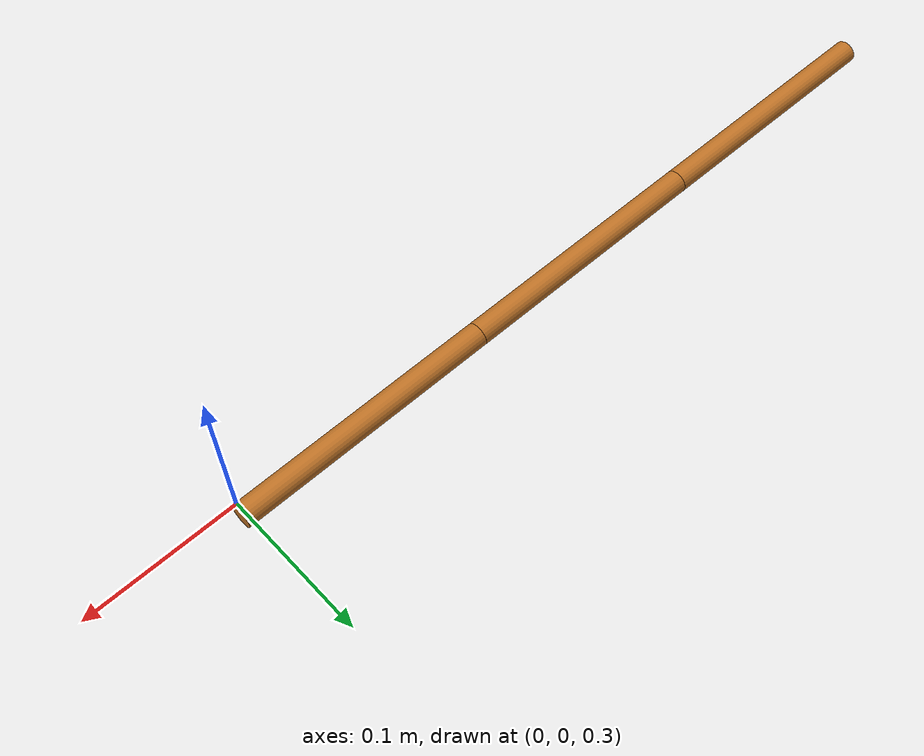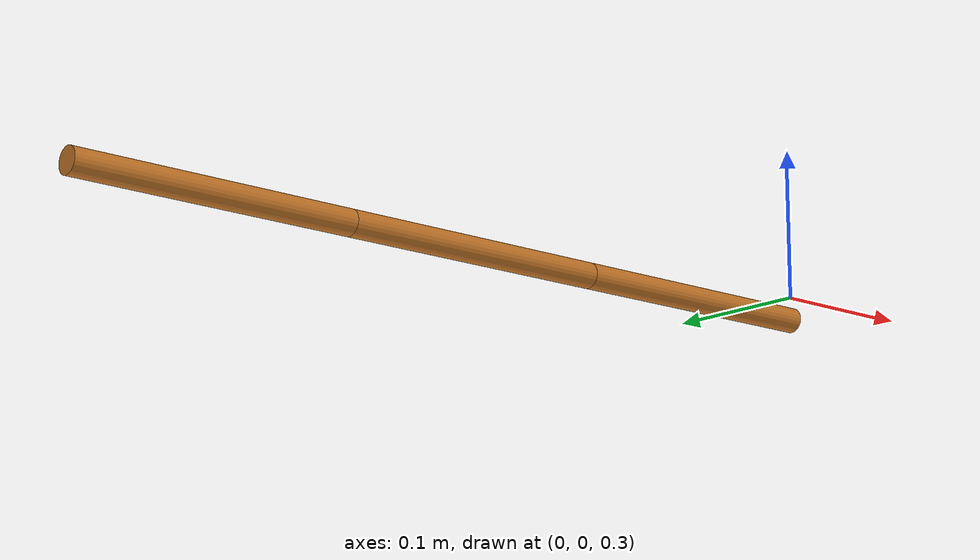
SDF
<?xml version="1.0" encoding="UTF-8"?>
<sdf version='1.9'>
  <model name='rigid_arm_3link'>
    <pose>0 0 0.30 0 0 0</pose>
    <self_collide>false</self_collide>
    <static>false</static>

    <!-- ===== Link 1 (shoulder-driven rod) ===== -->
    <link name="rigid_arm_3link/link_1">
      <pose>0 0 -0.015 0 1.5708 0</pose>
      <gravity>true</gravity>
      <self_collide>false</self_collide>
      <velocity_decay/>
      <inertial>
        <!-- rod, r=0.008 L=0.18 m=0.025kg, about its own CoM (offset -0.09 -->
        <!-- along local z, matching the collision/visual pose below); -->
        <!-- izz is about the rod's long axis (m*r^2/2, independent of L), -->
        <!-- ixx/iyy perpendicular to it (m*(3r^2+L^2)/12). Kept -->
        <!-- intentionally light (25g, same as a single prop elsewhere in -->
        <!-- this project) so swinging the arm doesn't meaningfully perturb -->
        <!-- the ~4.16kg vehicle. -->
        <pose>0 0 -0.09 0 0 0</pose>
        <mass>0.025</mass>
        <inertia>
          <ixx>6.79e-5</ixx>
          <iyy>6.79e-5</iyy>
          <izz>8.0e-7</izz>
        </inertia>
      </inertial>
      <collision name="rigid_arm_3link/link_1_collision">
        <pose>0 0 -0.09 0 0 0</pose>
        <geometry>
          <cylinder><radius>0.008</radius><length>0.18</length></cylinder>
        </geometry>
      </collision>
      <visual name="rigid_arm_3link/link_1_visual">
        <pose>0 0 -0.09 0 0 0</pose>
        <geometry>
          <cylinder><radius>0.008</radius><length>0.18</length></cylinder>
        </geometry>
        <material>
          <ambient>0.6 0.35 0.1 1</ambient>
          <diffuse>0.75 0.45 0.15 1</diffuse>
          <specular>0.3 0.3 0.3 1</specular>
        </material>
      </visual>
    </link>

    <!-- ===== Link 2 (elbow-driven rod) ===== -->
    <link name="rigid_arm_3link/link_2">
      <pose>-0.18 0 -0.015 0 1.5708 0</pose>
      <gravity>true</gravity>
      <self_collide>false</self_collide>
      <velocity_decay/>
      <inertial>
        <pose>0 0 -0.09 0 0 0</pose>
        <mass>0.025</mass>
        <inertia>
          <ixx>6.79e-5</ixx>
          <iyy>6.79e-5</iyy>
          <izz>8.0e-7</izz>
        </inertia>
      </inertial>
      <collision name="rigid_arm_3link/link_2_collision">
        <pose>0 0 -0.09 0 0 0</pose>
        <geometry>
          <cylinder><radius>0.008</radius><length>0.18</length></cylinder>
        </geometry>
      </collision>
      <visual name="rigid_arm_3link/link_2_visual">
        <pose>0 0 -0.09 0 0 0</pose>
        <geometry>
          <cylinder><radius>0.008</radius><length>0.18</length></cylinder>
        </geometry>
        <material>
          <ambient>0.6 0.35 0.1 1</ambient>
          <diffuse>0.75 0.45 0.15 1</diffuse>
          <specular>0.3 0.3 0.3 1</specular>
        </material>
      </visual>
    </link>

    <joint name="rigid_arm_joint_2" type="revolute">
      <parent>rigid_arm_3link/link_1</parent>
      <child>rigid_arm_3link/link_2</child>
      <axis>
        <xyz>0 -1 0</xyz>
        <limit>
          <lower>-2.0944</lower>
          <upper>2.0944</upper>
          <effort>0.6</effort>
          <velocity>3.0</velocity>
        </limit>
        <dynamics>
          <damping>0.05</damping>
          <friction>0.01</friction>
        </dynamics>
      </axis>
    </joint>

    <!-- ===== Link 3 (wrist-driven rod) ===== -->
    <link name="rigid_arm_3link/link_3">
      <pose>-0.36 0 -0.015 0 1.5708 0</pose>
      <gravity>true</gravity>
      <self_collide>false</self_collide>
      <velocity_decay/>
      <inertial>
        <pose>0 0 -0.09 0 0 0</pose>
        <mass>0.025</mass>
        <inertia>
          <ixx>6.79e-5</ixx>
          <iyy>6.79e-5</iyy>
          <izz>8.0e-7</izz>
        </inertia>
      </inertial>
      <collision name="rigid_arm_3link/link_3_collision">
        <pose>0 0 -0.09 0 0 0</pose>
        <geometry>
          <cylinder><radius>0.008</radius><length>0.18</length></cylinder>
        </geometry>
      </collision>
      <visual name="rigid_arm_3link/link_3_visual">
        <pose>0 0 -0.09 0 0 0</pose>
        <geometry>
          <cylinder><radius>0.008</radius><length>0.18</length></cylinder>
        </geometry>
        <material>
          <ambient>0.6 0.35 0.1 1</ambient>
          <diffuse>0.75 0.45 0.15 1</diffuse>
          <specular>0.3 0.3 0.3 1</specular>
        </material>
      </visual>
    </link>

    <joint name="rigid_arm_joint_3" type="revolute">
      <parent>rigid_arm_3link/link_2</parent>
      <child>rigid_arm_3link/link_3</child>
      <axis>
        <xyz>0 -1 0</xyz>
        <limit>
          <lower>-2.0944</lower>
          <upper>2.0944</upper>
          <effort>0.6</effort>
          <velocity>3.0</velocity>
        </limit>
        <dynamics>
          <damping>0.05</damping>
          <friction>0.01</friction>
        </dynamics>
      </axis>
    </joint>

    <plugin filename="gz-sim-joint-trajectory-controller-system" name="gz::sim::systems::JointTrajectoryController">
      <joint_name>rigid_arm_joint_1</joint_name>
      <initial_position>0</initial_position>
      <position_p_gain>4.0</position_p_gain>
      <position_i_gain>0.05</position_i_gain>
      <position_d_gain>0.15</position_d_gain>
      <position_i_min>-0.3</position_i_min>
      <position_i_max>0.3</position_i_max>
      <position_cmd_min>-0.6</position_cmd_min>
      <position_cmd_max>0.6</position_cmd_max>
      <velocity_p_gain>0.3</velocity_p_gain>
      <velocity_i_gain>1.0</velocity_i_gain>
      <velocity_cmd_min>-0.6</velocity_cmd_min>
      <velocity_cmd_max>0.6</velocity_cmd_max>

      <joint_name>rigid_arm_joint_2</joint_name>
      <initial_position>0</initial_position>
      <position_p_gain>4.0</position_p_gain>
      <position_i_gain>0.05</position_i_gain>
      <position_d_gain>0.15</position_d_gain>
      <position_i_min>-0.3</position_i_min>
      <position_i_max>0.3</position_i_max>
      <position_cmd_min>-0.6</position_cmd_min>
      <position_cmd_max>0.6</position_cmd_max>
      <velocity_p_gain>0.3</velocity_p_gain>
      <velocity_i_gain>1.0</velocity_i_gain>
      <velocity_cmd_min>-0.6</velocity_cmd_min>
      <velocity_cmd_max>0.6</velocity_cmd_max>

      <joint_name>rigid_arm_joint_3</joint_name>
      <initial_position>0</initial_position>
      <position_p_gain>4.0</position_p_gain>
      <position_i_gain>0.05</position_i_gain>
      <position_d_gain>0.15</position_d_gain>
      <position_i_min>-0.3</position_i_min>
      <position_i_max>0.3</position_i_max>
      <position_cmd_min>-0.6</position_cmd_min>
      <position_cmd_max>0.6</position_cmd_max>
      <velocity_p_gain>0.3</velocity_p_gain>
      <velocity_i_gain>1.0</velocity_i_gain>
      <velocity_cmd_min>-0.6</velocity_cmd_min>
      <velocity_cmd_max>0.6</velocity_cmd_max>
    </plugin>

    <plugin filename="gz-sim-joint-state-publisher-system" name="gz::sim::systems::JointStatePublisher">
      <topic>/rigid_arm_3link/joint_states</topic>
      <joint_name>rigid_arm_joint_1</joint_name>
      <joint_name>rigid_arm_joint_2</joint_name>
      <joint_name>rigid_arm_joint_3</joint_name>
    </plugin>

  </model>
</sdf>
